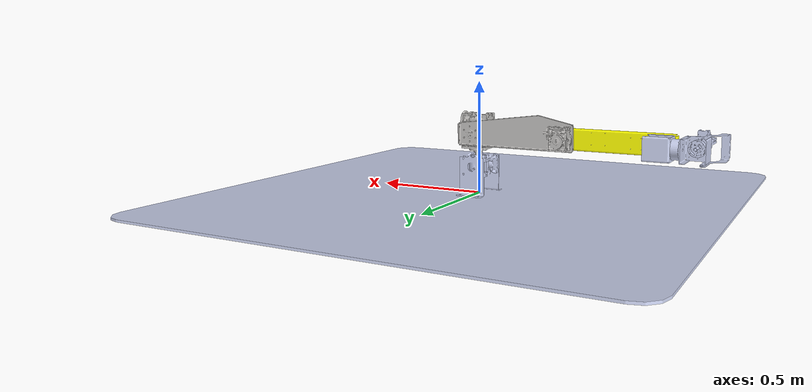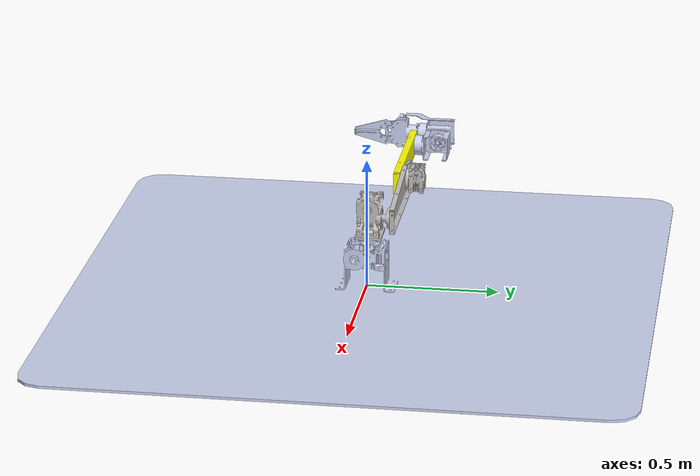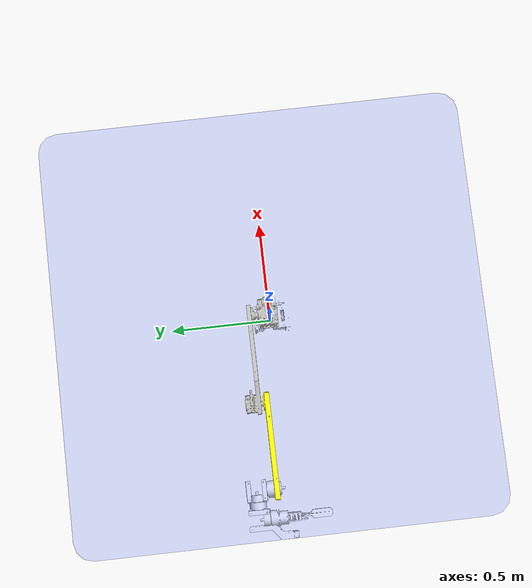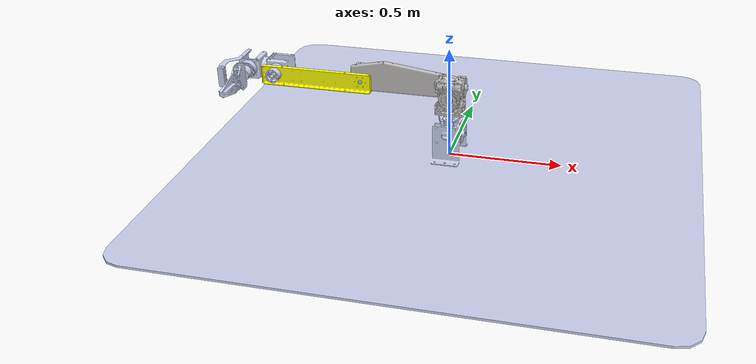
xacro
<?xml version="1.0"?>
<robot xmlns:xacro="http://www.ros.org/wiki/xacro" name="skai_arm">
    <xacro:arg name="initial_positions_file" default="initial_positions.yaml" />

    <!-- Import skai_arm urdf file -->
    <xacro:include filename="$(find arm_rviz)/urdf/skai_arm.urdf" />

    <!-- Import control_xacro -->
    <xacro:include filename="skai_arm.ros2_control.xacro" />

    <xacro:skai_arm_ros2_control name="FakeSystem" initial_positions_file="$(arg initial_positions_file)"/>

</robot>

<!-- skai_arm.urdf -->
<robot
  name="skai_arm">
  <link
    name="base_link">
    <inertial>
      <origin
        xyz="6.661E-05 -6.7654E-05 -0.0023074"
        rpy="0 0 0" />
      <mass
        value="49.417" />
      <inertia
        ixx="19.424"
        ixy="0.0001122"
        ixz="-1.4598E-06"
        iyy="19.424"
        iyz="5.3023E-06"
        izz="38.846" />
    </inertial>
    <visual>
      <origin
        xyz="0 0 0"
        rpy="0 0 0" />
      <geometry>
        <mesh
          filename="package://arm_rviz/meshes/BASE.STL" />
      </geometry>
      <material
        name="gray">
        <color
          rgba="0.79216 0.81961 0.93333 1" />
      </material>
    </visual>
    <collision>
      <origin
        xyz="0 0 0"
        rpy="0 0 0" />
      <geometry>
        <mesh
          filename="package://arm_rviz/meshes/BASE.STL" />
      </geometry>
    </collision>
  </link>
  <link
    name="J_1">
    <inertial>
      <origin
        xyz="0.0030632 -0.00037054 0.19009"
        rpy="0 0 0" />
      <mass
        value="1.089" />
      <inertia
        ixx="0.0018485"
        ixy="-1.4598E-06"
        ixz="-0.00011196"
        iyy="0.0024341"
        iyz="-5.3023E-06"
        izz="0.001692" />
    </inertial>
    <visual>
      <origin
        xyz="0 0 0"
        rpy="0 0 0" />
      <geometry>
        <mesh
          filename="package://arm_rviz/meshes/J_1.STL" />
      </geometry>
      <material
        name="gray">
        <color
          rgba="0.7451 0.73725 0.72941 1" />
      </material>
    </visual>
    <collision>
      <origin
        xyz="0 0 0"
        rpy="0 0 0" />
      <geometry>
        <mesh
          filename="package://arm_rviz/meshes/J_1.STL" />
      </geometry>
    </collision>
  </link>
  <joint
    name="ROT_1"
    type="revolute">
    <origin
      xyz="0 0.012 0.082"
      rpy="0 0 0" />
    <parent
      link="base_link" />
    <child
      link="J_1" />
    <axis
      xyz="0 0 -1" />
    <limit
      lower="-3.14"
      upper="3.14"
      effort="10"
      velocity="0.1" />
  </joint>
  <link
    name="J_2">
    <inertial>
      <origin
        xyz="-0.25856 0.13854 0.13905"
        rpy="0 0 0" />
      <mass
        value="0.721" />
      <inertia
        ixx="0.0019755"
        ixy="0.0020808"
        ixz="-3.9585E-06"
        iyy="0.004707"
        iyz="1.0786E-06"
        izz="0.00632" />
    </inertial>
    <visual>
      <origin
        xyz="0 0 0"
        rpy="0 0 0" />
      <geometry>
        <mesh
          filename="package://arm_rviz/meshes/J_2.STL" />
      </geometry>
      <material
        name="gray">
        <color
          rgba="0.7451 0.73725 0.72941 1" />
      </material>
    </visual>
    <collision>
      <origin
        xyz="0 0 0"
        rpy="0 0 0" />
      <geometry>
        <mesh
          filename="package://arm_rviz/meshes/J_2.STL" />
      </geometry>
    </collision>
  </link>
  <joint
    name="PITCH_1"
    type="revolute">
    <origin
      xyz="0 -0.046 0.194"
      rpy="-1.5708 0.5236 0" />
    <parent
      link="J_1" />
    <child
      link="J_2" />
    <axis
      xyz="0 0 -1" />
    <limit
      lower="-3.14"
      upper="0"
      effort="10"
      velocity="0.1" />
  </joint>
  <link
    name="J_3">
    <inertial>
      <origin
        xyz="-0.17796 -3.4592E-06 0.0015136"
        rpy="0 0 0" />
      <mass
        value="0.21768" />
      <inertia
        ixx="0.00022662"
        ixy="3.7932E-08"
        ixz="8.2613E-06"
        iyy="0.0045022"
        iyz="-3.6856E-09"
        izz="0.0047078" />
    </inertial>
    <visual>
      <origin
        xyz="0 0 0"
        rpy="0 0 0" />
      <geometry>
        <mesh
          filename="package://arm_rviz/meshes/J_3.STL" />
      </geometry>
      <material
        name="gray">
        <color
          rgba="1 1 0 1" />
      </material>
    </visual>
    <collision>
      <origin
        xyz="0 0 0"
        rpy="0 0 0" />
      <geometry>
        <mesh
          filename="package://arm_rviz/meshes/J_3.STL" />
      </geometry>
    </collision>
  </link>
  <joint
    name="PITCH_2"
    type="revolute">
    <origin
      xyz="-0.37152 0.2145 0.103"
      rpy="3.1416 0 -0.5236" />
    <parent
      link="J_2" />
    <child
      link="J_3" />
    <axis
      xyz="0 0 -1" />
    <limit
      lower="-2.61"
      upper="2.61"
      effort="10"
      velocity="0.1" />
  </joint>
  <link
    name="J_4">
    <inertial>
      <origin
        xyz="0.0015946 0.0041989 -0.028525"
        rpy="0 0 0" />
      <mass
        value="0.2071" />
      <inertia
        ixx="0.00034764"
        ixy="1.6788E-07"
        ixz="-4.447E-08"
        iyy="0.00034785"
        iyz="-2.7415E-07"
        izz="0.00030028" />
    </inertial>
    <visual>
      <origin
        xyz="0 0 0"
        rpy="0 0 0" />
      <geometry>
        <mesh
          filename="package://arm_rviz/meshes/J_4.STL" />
      </geometry>
      <material
        name="gray">
        <color
          rgba="0.79216 0.81961 0.93333 1" />
      </material>
    </visual>
    <collision>
      <origin
        xyz="0 0 0"
        rpy="0 0 0" />
      <geometry>
        <mesh
          filename="package://arm_rviz/meshes/J_4.STL" />
      </geometry>
    </collision>
  </link>
  <joint
    name="PITCH_3"
    type="revolute">
    <origin
      xyz="-0.408999999999995 0 -0.0160000000000003"
      rpy="0 0 1.93219930379001" />
    <parent
      link="J_3" />
    <child
      link="J_4" />
    <axis
      xyz="0 0 1" />
    <limit
      lower="-3.14"
      upper="3.14"
      effort="10"
      velocity="0.1" />
  </joint>
  <link
    name="J_5">
    <inertial>
      <origin
        xyz="-0.010801 -0.028638 -0.054011"
        rpy="0 0 0" />
      <mass
        value="0.26474" />
      <inertia
        ixx="0.00046905"
        ixy="-7.8272E-06"
        ixz="-1.1352E-05"
        iyy="0.00045114"
        iyz="-2.9949E-05"
        izz="0.0004929" />
    </inertial>
    <visual>
      <origin
        xyz="0 0 0"
        rpy="0 0 0" />
      <geometry>
        <mesh
          filename="package://arm_rviz/meshes/J_5.STL" />
      </geometry>
      <material
        name="gray">
        <color
          rgba="0.79216 0.81961 0.93333 1" />
      </material>
    </visual>
    <collision>
      <origin
        xyz="0 0 0"
        rpy="0 0 0" />
      <geometry>
        <mesh
          filename="package://arm_rviz/meshes/J_5.STL" />
      </geometry>
    </collision>
  </link>
  <joint
    name="ROT_2"
    type="revolute">
    <origin
      xyz="0.023514 0.062204 -0.0725"
      rpy="-1.5708 0.3614 2.7802" />
    <parent
      link="J_4" />
    <child
      link="J_5" />
    <axis
      xyz="0 0 -1" />
    <limit
      lower="-3.14"
      upper="3.14"
      effort="10"
      velocity="0.1" />
  </joint>
  <link
    name="J_6">
    <inertial>
      <origin
        xyz="-0.0023982 -8.4489E-05 -0.19286"
        rpy="0 0 0" />
      <mass
        value="0.3973" />
      <inertia
        ixx="0.00032473"
        ixy="6.6401E-07"
        ixz="-4.714E-08"
        iyy="0.00024386"
        iyz="-5.5297E-09"
        izz="0.00026347" />
    </inertial>
    <visual>
      <origin
        xyz="0 0 0"
        rpy="0 0 0" />
      <geometry>
        <mesh
          filename="package://arm_rviz/meshes/J_6.STL" />
      </geometry>
      <material
        name="gray">
        <color
          rgba="0.79216 0.81961 0.93333 1" />
      </material>
    </visual>
    <collision>
      <origin
        xyz="0 0 0"
        rpy="0 0 0" />
      <geometry>
        <mesh
          filename="package://arm_rviz/meshes/J_6.STL" />
      </geometry>
    </collision>
  </link>
  <joint
    name="ROT_3"
    type="revolute">
    <origin
      xyz="-0.12301 -0.32542 -0.0695"
      rpy="1.221 -1.5708 0" />
    <parent
      link="J_5" />
    <child
      link="J_6" />
    <axis
      xyz="0 0 1" />
    <limit
      lower="-3.14"
      upper="3.14"
      effort="10"
      velocity="0.1" />
  </joint>
</robot>
